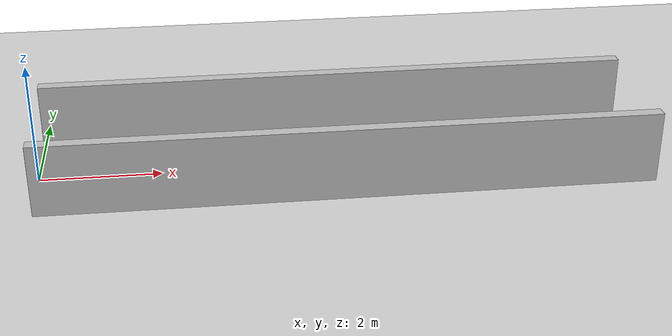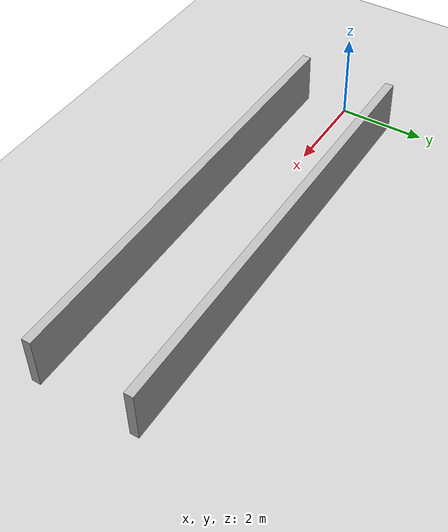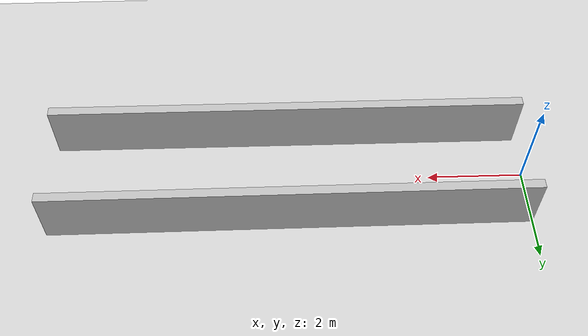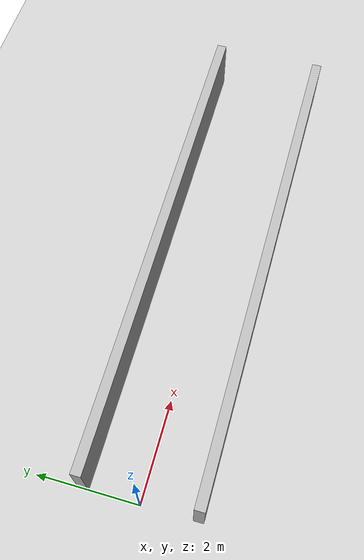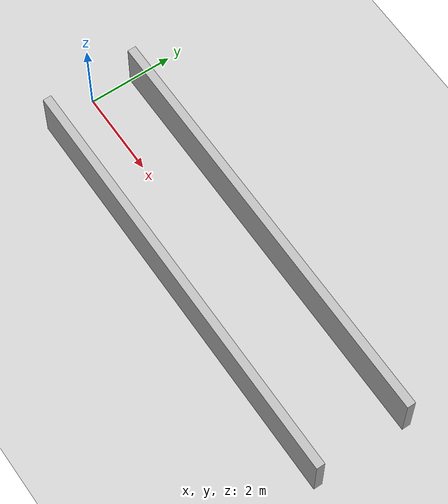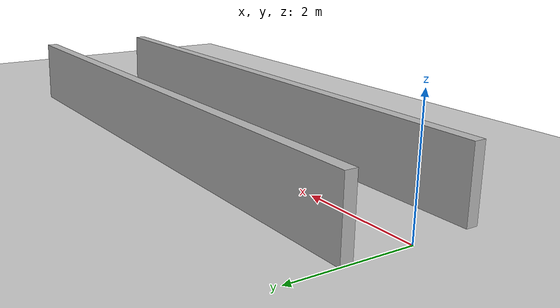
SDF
<?xml version="1.0"?>
<sdf version="1.6">
  <world name="v2-04c-r-corridor-s4509">
    <gravity>0 0 -9.81</gravity>
    <physics name="v2_deterministic" type="ode">
      <max_step_size>0.002</max_step_size>
      <real_time_update_rate>500</real_time_update_rate>
    </physics>
    <include>
      <uri>model://sun</uri>
    </include>
    <include>
      <uri>model://ground_plane</uri>
    </include>
    <model name="r-corridor-left">
      <static>true</static>
      <pose>4.991899262 1.091046237 0.600000000 0 0 0.001589783</pose>
      <link name="link">
        <collision name="collision">
          <geometry>
            <box>
              <size>10.000000 0.200000 1.200000</size>
            </box>
          </geometry>
        </collision>
        <visual name="visual">
          <geometry>
            <box>
              <size>10.000000 0.200000 1.200000</size>
            </box>
          </geometry>
        </visual>
      </link>
    </model>
    <model name="r-corridor-right">
      <static>true</static>
      <pose>5.009502345 -1.091765290 0.600000000 0 0 -0.002588753</pose>
      <link name="link">
        <collision name="collision">
          <geometry>
            <box>
              <size>10.000000 0.200000 1.200000</size>
            </box>
          </geometry>
        </collision>
        <visual name="visual">
          <geometry>
            <box>
              <size>10.000000 0.200000 1.200000</size>
            </box>
          </geometry>
        </visual>
      </link>
    </model>
  </world>
</sdf>
